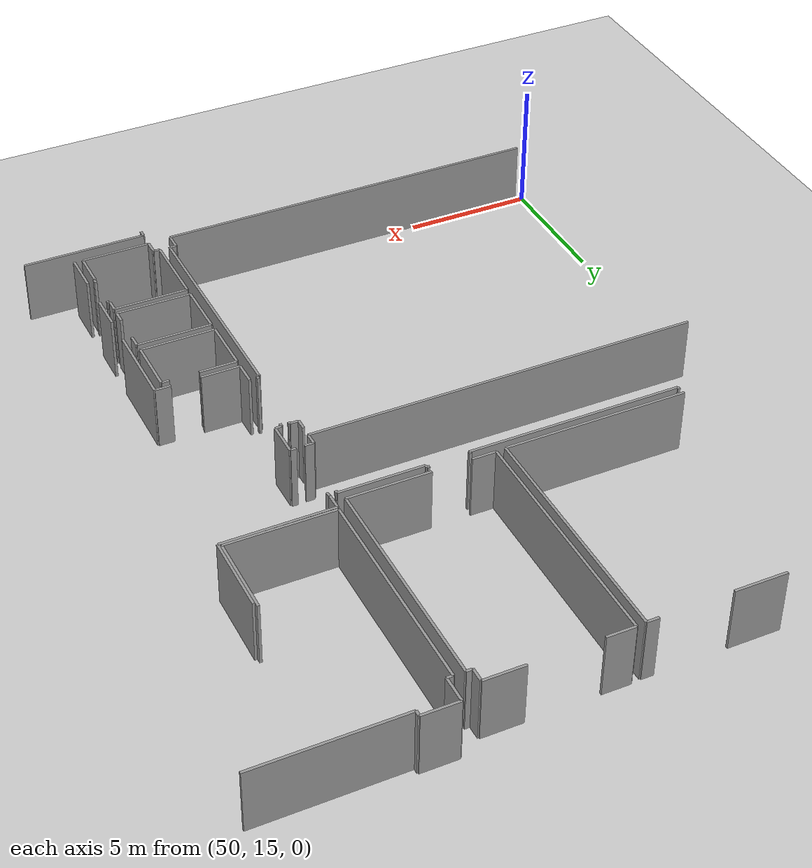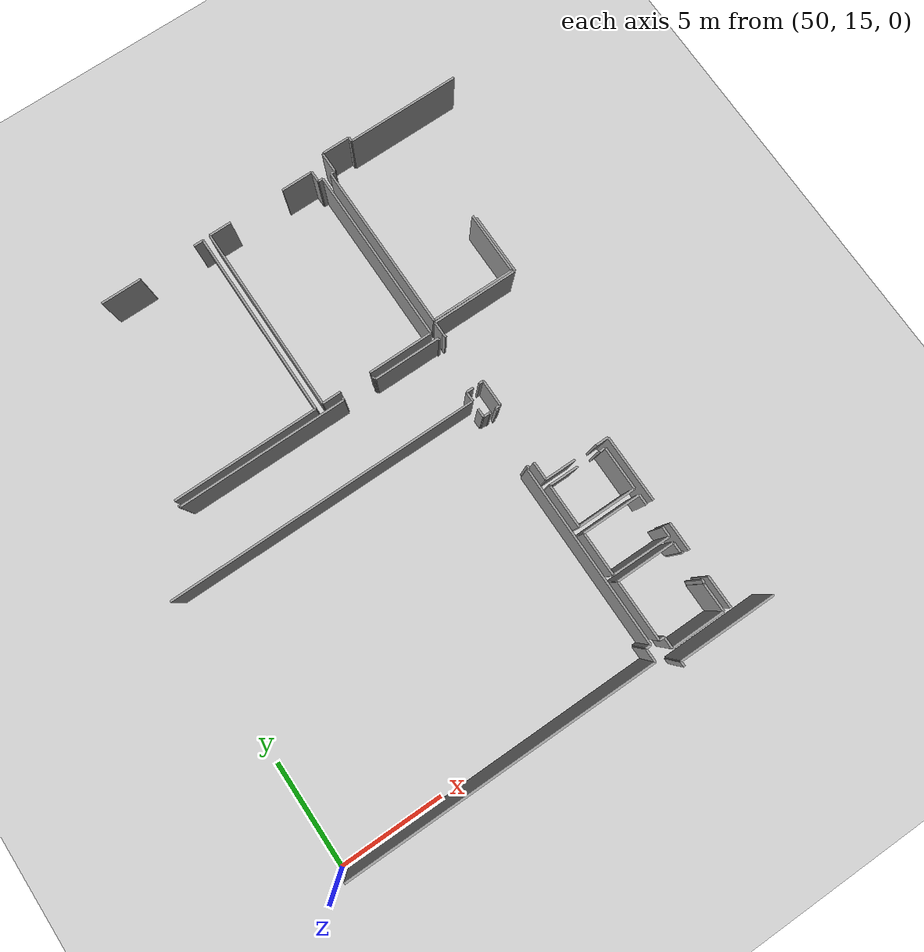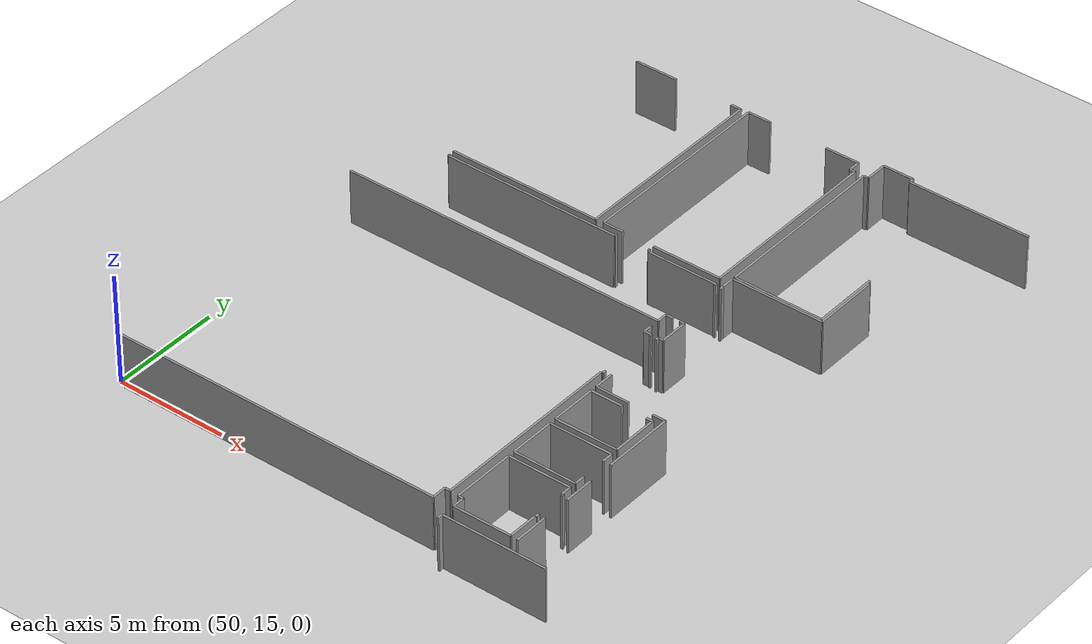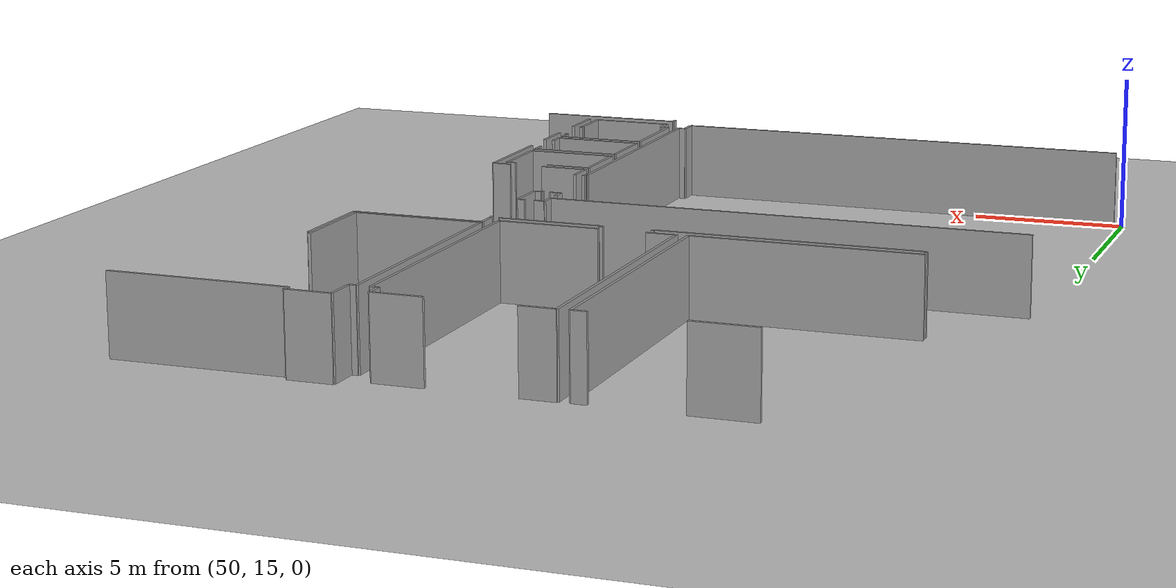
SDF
<sdf version="1.6">
 <world name="default">
  <model name="ground_plane">
   <static>1</static>
   <link name="link">
    <collision name="collision">
     <geometry><plane><normal>0 0 1</normal><size>100 100</size></plane></geometry>
     <surface><friction><ode><mu>100</mu><mu2>50</mu2></ode></friction></surface>
    </collision>
    <visual name="visual">
     <cast_shadows>0</cast_shadows>
     <geometry><plane><normal>0 0 1</normal><size>100 100</size></plane></geometry>
     <material>
      <script><uri>file://media/materials/scripts/gazebo.material</uri><name>Gazebo/Grey</name></script>
     </material>
    </visual>
   </link>
  </model>
  <model name="0510035739_A_40_1_102">
   <static>1</static>
   <link name="Wall_568">
    <collision name="Wall_568_Collision">
     <geometry><box><size>0.252937887574 0.1 2.5</size></box></geometry>
     <pose>0.126468943787 0 1.25 0 0 0</pose>
    </collision>
    <visual name="Wall_568_Visual">
     <pose>0.126468943787 0 1.25 0 0 0</pose>
     <geometry><box><size>0.252937887574 0.1 2.5</size></box></geometry>
     <material>
      <script><uri>file://media/materials/scripts/gazebo.material</uri><name>Gazebo/Grey</name></script>
      <ambient>1 1 1 1</ambient>
     </material>
    </visual>
    <pose>158.758133558 -35.7610361029 0 0 0 1.57079632679</pose>
   </link>
   <link name="Wall_569">
    <collision name="Wall_569_Collision">
     <geometry><box><size>4.76888532846 0.1 2.5</size></box></geometry>
     <pose>2.38444266423 0 1.25 0 0 0</pose>
    </collision>
    <visual name="Wall_569_Visual">
     <pose>2.38444266423 0 1.25 0 0 0</pose>
     <geometry><box><size>4.76888532846 0.1 2.5</size></box></geometry>
     <material>
      <script><uri>file://media/materials/scripts/gazebo.material</uri><name>Gazebo/Grey</name></script>
      <ambient>1 1 1 1</ambient>
     </material>
    </visual>
    <pose>158.758133558 -35.5080982153 0 0 0 0.0</pose>
   </link>
   <link name="Wall_801">
    <collision name="Wall_801_Collision">
     <geometry><box><size>1.9817288674 0.1 2.5</size></box></geometry>
     <pose>0.990864433698 0 1.25 0 0 0</pose>
    </collision>
    <visual name="Wall_801_Visual">
     <pose>0.990864433698 0 1.25 0 0 0</pose>
     <geometry><box><size>1.9817288674 0.1 2.5</size></box></geometry>
     <material>
      <script><uri>file://media/materials/scripts/gazebo.material</uri><name>Gazebo/Grey</name></script>
      <ambient>1 1 1 1</ambient>
     </material>
    </visual>
    <pose>146.998177472 -9.24331325708 0 0 0 0.0</pose>
   </link>
   <link name="Wall_802">
    <collision name="Wall_802_Collision">
     <geometry><box><size>0.46639403036 0.1 2.5</size></box></geometry>
     <pose>0.23319701518 0 1.25 0 0 0</pose>
    </collision>
    <visual name="Wall_802_Visual">
     <pose>0.23319701518 0 1.25 0 0 0</pose>
     <geometry><box><size>0.46639403036 0.1 2.5</size></box></geometry>
     <material>
      <script><uri>file://media/materials/scripts/gazebo.material</uri><name>Gazebo/Grey</name></script>
      <ambient>1 1 1 1</ambient>
     </material>
    </visual>
    <pose>151.702873125 -9.24331325708 0 0 0 0.0</pose>
   </link>
   <link name="Wall_803">
    <collision name="Wall_803_Collision">
     <geometry><box><size>9.13887767409 0.1 2.5</size></box></geometry>
     <pose>4.56943883705 0 1.25 0 0 0</pose>
    </collision>
    <visual name="Wall_803_Visual">
     <pose>4.56943883705 0 1.25 0 0 0</pose>
     <geometry><box><size>9.13887767409 0.1 2.5</size></box></geometry>
     <material>
      <script><uri>file://media/materials/scripts/gazebo.material</uri><name>Gazebo/Grey</name></script>
      <ambient>1 1 1 1</ambient>
     </material>
    </visual>
    <pose>152.169267155 -9.24331325708 0 0 0 -1.57079632679</pose>
   </link>
   <link name="Wall_804">
    <collision name="Wall_804_Collision">
     <geometry><box><size>7.04532631662 0.1 2.5</size></box></geometry>
     <pose>3.52266315831 0 1.25 0 0 0</pose>
    </collision>
    <visual name="Wall_804_Visual">
     <pose>3.52266315831 0 1.25 0 0 0</pose>
     <geometry><box><size>7.04532631662 0.1 2.5</size></box></geometry>
     <material>
      <script><uri>file://media/materials/scripts/gazebo.material</uri><name>Gazebo/Grey</name></script>
      <ambient>1 1 1 1</ambient>
     </material>
    </visual>
    <pose>152.169267155 -18.3821909312 0 0 0 3.14159265359</pose>
   </link>
   <link name="Wall_808">
    <collision name="Wall_808_Collision">
     <geometry><box><size>9.13658518569 0.1 2.5</size></box></geometry>
     <pose>4.56829259284 0 1.25 0 0 0</pose>
    </collision>
    <visual name="Wall_808_Visual">
     <pose>4.56829259284 0 1.25 0 0 0</pose>
     <geometry><box><size>9.13658518569 0.1 2.5</size></box></geometry>
     <material>
      <script><uri>file://media/materials/scripts/gazebo.material</uri><name>Gazebo/Grey</name></script>
      <ambient>1 1 1 1</ambient>
     </material>
    </visual>
    <pose>152.532499207 -18.3490772097 0 0 0 1.57079632679</pose>
   </link>
   <link name="Wall_809">
    <collision name="Wall_809_Collision">
     <geometry><box><size>1.08154508624 0.1 2.5</size></box></geometry>
     <pose>0.540772543121 0 1.25 0 0 0</pose>
    </collision>
    <visual name="Wall_809_Visual">
     <pose>0.540772543121 0 1.25 0 0 0</pose>
     <geometry><box><size>1.08154508624 0.1 2.5</size></box></geometry>
     <material>
      <script><uri>file://media/materials/scripts/gazebo.material</uri><name>Gazebo/Grey</name></script>
      <ambient>1 1 1 1</ambient>
     </material>
    </visual>
    <pose>152.532499207 -9.21249202405 0 0 0 0.0</pose>
   </link>
   <link name="Wall_810">
    <collision name="Wall_810_Collision">
     <geometry><box><size>1.55634490743 0.1 2.5</size></box></geometry>
     <pose>0.778172453714 0 1.25 0 0 0</pose>
    </collision>
    <visual name="Wall_810_Visual">
     <pose>0.778172453714 0 1.25 0 0 0</pose>
     <geometry><box><size>1.55634490743 0.1 2.5</size></box></geometry>
     <material>
      <script><uri>file://media/materials/scripts/gazebo.material</uri><name>Gazebo/Grey</name></script>
      <ambient>1 1 1 1</ambient>
     </material>
    </visual>
    <pose>156.318671172 -9.21249202405 0 0 0 0.0</pose>
   </link>
   <link name="Wall_811">
    <collision name="Wall_811_Collision">
     <geometry><box><size>0.543319752462 0.1 2.5</size></box></geometry>
     <pose>0.271659876231 0 1.25 0 0 0</pose>
    </collision>
    <visual name="Wall_811_Visual">
     <pose>0.271659876231 0 1.25 0 0 0</pose>
     <geometry><box><size>0.543319752462 0.1 2.5</size></box></geometry>
     <material>
      <script><uri>file://media/materials/scripts/gazebo.material</uri><name>Gazebo/Grey</name></script>
      <ambient>1 1 1 1</ambient>
     </material>
    </visual>
    <pose>157.875016079 -9.21249202405 0 0 0 -1.57079632679</pose>
   </link>
   <link name="Wall_812">
    <collision name="Wall_812_Collision">
     <geometry><box><size>0.234597980318 0.1 2.5</size></box></geometry>
     <pose>0.117298990159 0 1.25 0 0 0</pose>
    </collision>
    <visual name="Wall_812_Visual">
     <pose>0.117298990159 0 1.25 0 0 0</pose>
     <geometry><box><size>0.234597980318 0.1 2.5</size></box></geometry>
     <material>
      <script><uri>file://media/materials/scripts/gazebo.material</uri><name>Gazebo/Grey</name></script>
      <ambient>1 1 1 1</ambient>
     </material>
    </visual>
    <pose>157.875016079 -9.75581177651 0 0 0 0.0</pose>
   </link>
   <link name="Wall_813">
    <collision name="Wall_813_Collision">
     <geometry><box><size>8.59199182855 0.1 2.5</size></box></geometry>
     <pose>4.29599591428 0 1.25 0 0 0</pose>
    </collision>
    <visual name="Wall_813_Visual">
     <pose>4.29599591428 0 1.25 0 0 0</pose>
     <geometry><box><size>8.59199182855 0.1 2.5</size></box></geometry>
     <material>
      <script><uri>file://media/materials/scripts/gazebo.material</uri><name>Gazebo/Grey</name></script>
      <ambient>1 1 1 1</ambient>
     </material>
    </visual>
    <pose>158.10961406 -9.75581177651 0 0 0 -1.57079632679</pose>
   </link>
   <link name="Wall_814">
    <collision name="Wall_814_Collision">
     <geometry><box><size>3.15777542019 0.1 2.5</size></box></geometry>
     <pose>1.5788877101 0 1.25 0 0 0</pose>
    </collision>
    <visual name="Wall_814_Visual">
     <pose>1.5788877101 0 1.25 0 0 0</pose>
     <geometry><box><size>3.15777542019 0.1 2.5</size></box></geometry>
     <material>
      <script><uri>file://media/materials/scripts/gazebo.material</uri><name>Gazebo/Grey</name></script>
      <ambient>1 1 1 1</ambient>
     </material>
    </visual>
    <pose>158.10961406 -18.3478036051 0 0 0 3.14159265359</pose>
   </link>
   <link name="Wall_815">
    <collision name="Wall_815_Collision">
     <geometry><box><size>0.925402030045 0.1 2.5</size></box></geometry>
     <pose>0.462701015022 0 1.25 0 0 0</pose>
    </collision>
    <visual name="Wall_815_Visual">
     <pose>0.462701015022 0 1.25 0 0 0</pose>
     <geometry><box><size>0.925402030045 0.1 2.5</size></box></geometry>
     <material>
      <script><uri>file://media/materials/scripts/gazebo.material</uri><name>Gazebo/Grey</name></script>
      <ambient>1 1 1 1</ambient>
     </material>
    </visual>
    <pose>153.457900361 -18.3478036051 0 0 0 -3.14021638141</pose>
   </link>
   <link name="Wall_832">
    <collision name="Wall_832_Collision">
     <geometry><box><size>0.410864866724 0.1 2.5</size></box></geometry>
     <pose>0.205432433362 0 1.25 0 0 0</pose>
    </collision>
    <visual name="Wall_832_Visual">
     <pose>0.205432433362 0 1.25 0 0 0</pose>
     <geometry><box><size>0.410864866724 0.1 2.5</size></box></geometry>
     <material>
      <script><uri>file://media/materials/scripts/gazebo.material</uri><name>Gazebo/Grey</name></script>
      <ambient>1 1 1 1</ambient>
     </material>
    </visual>
    <pose>157.884440754 -22.2549680134 0 0 0 -1.57079632679</pose>
   </link>
   <link name="Wall_833">
    <collision name="Wall_833_Collision">
     <geometry><box><size>0.330373051544 0.1 2.5</size></box></geometry>
     <pose>0.165186525772 0 1.25 0 0 0</pose>
    </collision>
    <visual name="Wall_833_Visual">
     <pose>0.165186525772 0 1.25 0 0 0</pose>
     <geometry><box><size>0.330373051544 0.1 2.5</size></box></geometry>
     <material>
      <script><uri>file://media/materials/scripts/gazebo.material</uri><name>Gazebo/Grey</name></script>
      <ambient>1 1 1 1</ambient>
     </material>
    </visual>
    <pose>157.884440754 -22.6658328801 0 0 0 0.0</pose>
   </link>
   <link name="Wall_834">
    <collision name="Wall_834_Collision">
     <geometry><box><size>0.088133443203 0.1 2.5</size></box></geometry>
     <pose>0.0440667216015 0 1.25 0 0 0</pose>
    </collision>
    <visual name="Wall_834_Visual">
     <pose>0.0440667216015 0 1.25 0 0 0</pose>
     <geometry><box><size>0.088133443203 0.1 2.5</size></box></geometry>
     <material>
      <script><uri>file://media/materials/scripts/gazebo.material</uri><name>Gazebo/Grey</name></script>
      <ambient>1 1 1 1</ambient>
     </material>
    </visual>
    <pose>158.214813805 -22.6658328801 0 0 0 -1.57079632679</pose>
   </link>
   <link name="Wall_835">
    <collision name="Wall_835_Collision">
     <geometry><box><size>0.153342002336 0.1 2.5</size></box></geometry>
     <pose>0.0766710011679 0 1.25 0 0 0</pose>
    </collision>
    <visual name="Wall_835_Visual">
     <pose>0.0766710011679 0 1.25 0 0 0</pose>
     <geometry><box><size>0.153342002336 0.1 2.5</size></box></geometry>
     <material>
      <script><uri>file://media/materials/scripts/gazebo.material</uri><name>Gazebo/Grey</name></script>
      <ambient>1 1 1 1</ambient>
     </material>
    </visual>
    <pose>158.214813805 -25.4053565265 0 0 0 -1.57079632679</pose>
   </link>
   <link name="Wall_836">
    <collision name="Wall_836_Collision">
     <geometry><box><size>0.0789634895749 0.1 2.5</size></box></geometry>
     <pose>0.0394817447875 0 1.25 0 0 0</pose>
    </collision>
    <visual name="Wall_836_Visual">
     <pose>0.0394817447875 0 1.25 0 0 0</pose>
     <geometry><box><size>0.0789634895749 0.1 2.5</size></box></geometry>
     <material>
      <script><uri>file://media/materials/scripts/gazebo.material</uri><name>Gazebo/Grey</name></script>
      <ambient>1 1 1 1</ambient>
     </material>
    </visual>
    <pose>158.214813805 -25.5586985289 0 0 0 3.14159265359</pose>
   </link>
   <link name="Wall_837">
    <collision name="Wall_837_Collision">
     <geometry><box><size>8.74584327276 0.1 2.5</size></box></geometry>
     <pose>4.37292163638 0 1.25 0 0 0</pose>
    </collision>
    <visual name="Wall_837_Visual">
     <pose>4.37292163638 0 1.25 0 0 0</pose>
     <geometry><box><size>8.74584327276 0.1 2.5</size></box></geometry>
     <material>
      <script><uri>file://media/materials/scripts/gazebo.material</uri><name>Gazebo/Grey</name></script>
      <ambient>1 1 1 1</ambient>
     </material>
    </visual>
    <pose>158.135850316 -25.5586985289 0 0 0 -1.57079632679</pose>
   </link>
   <link name="Wall_838">
    <collision name="Wall_838_Collision">
     <geometry><box><size>0.251919003837 0.1 2.5</size></box></geometry>
     <pose>0.125959501919 0 1.25 0 0 0</pose>
    </collision>
    <visual name="Wall_838_Visual">
     <pose>0.125959501919 0 1.25 0 0 0</pose>
     <geometry><box><size>0.251919003837 0.1 2.5</size></box></geometry>
     <material>
      <script><uri>file://media/materials/scripts/gazebo.material</uri><name>Gazebo/Grey</name></script>
      <ambient>1 1 1 1</ambient>
     </material>
    </visual>
    <pose>158.135850316 -34.3045418016 0 0 0 3.14159265359</pose>
   </link>
   <link name="Wall_839">
    <collision name="Wall_839_Collision">
     <geometry><box><size>0.64597228891 0.1 2.5</size></box></geometry>
     <pose>0.322986144455 0 1.25 0 0 0</pose>
    </collision>
    <visual name="Wall_839_Visual">
     <pose>0.322986144455 0 1.25 0 0 0</pose>
     <geometry><box><size>0.64597228891 0.1 2.5</size></box></geometry>
     <material>
      <script><uri>file://media/materials/scripts/gazebo.material</uri><name>Gazebo/Grey</name></script>
      <ambient>1 1 1 1</ambient>
     </material>
    </visual>
    <pose>157.883931312 -34.3045418016 0 0 0 -1.57079632679</pose>
   </link>
   <link name="Wall_840">
    <collision name="Wall_840_Collision">
     <geometry><box><size>15.0957814392 0.1 2.5</size></box></geometry>
     <pose>7.54789071962 0 1.25 0 0 0</pose>
    </collision>
    <visual name="Wall_840_Visual">
     <pose>7.54789071962 0 1.25 0 0 0</pose>
     <geometry><box><size>15.0957814392 0.1 2.5</size></box></geometry>
     <material>
      <script><uri>file://media/materials/scripts/gazebo.material</uri><name>Gazebo/Grey</name></script>
      <ambient>1 1 1 1</ambient>
     </material>
    </visual>
    <pose>157.883931312 -34.9505140905 0 0 0 3.14159265359</pose>
   </link>
   <link name="Wall_861">
    <collision name="Wall_861_Collision">
     <geometry><box><size>0.101124210843 0.1 2.5</size></box></geometry>
     <pose>0.0505621054214 0 1.25 0 0 0</pose>
    </collision>
    <visual name="Wall_861_Visual">
     <pose>0.0505621054214 0 1.25 0 0 0</pose>
     <geometry><box><size>0.101124210843 0.1 2.5</size></box></geometry>
     <material>
      <script><uri>file://media/materials/scripts/gazebo.material</uri><name>Gazebo/Grey</name></script>
      <ambient>1 1 1 1</ambient>
     </material>
    </visual>
    <pose>145.179979444 -18.6274871907 0 0 0 -1.57079632679</pose>
   </link>
   <link name="Wall_862">
    <collision name="Wall_862_Collision">
     <geometry><box><size>8.18520249677 0.1 2.5</size></box></geometry>
     <pose>4.09260124839 0 1.25 0 0 0</pose>
    </collision>
    <visual name="Wall_862_Visual">
     <pose>4.09260124839 0 1.25 0 0 0</pose>
     <geometry><box><size>8.18520249677 0.1 2.5</size></box></geometry>
     <material>
      <script><uri>file://media/materials/scripts/gazebo.material</uri><name>Gazebo/Grey</name></script>
      <ambient>1 1 1 1</ambient>
     </material>
    </visual>
    <pose>145.179979444 -18.7286114016 0 0 0 0.0</pose>
   </link>
   <link name="Wall_863">
    <collision name="Wall_863_Collision">
     <geometry><box><size>0.11335081568 0.1 2.5</size></box></geometry>
     <pose>0.0566754078401 0 1.25 0 0 0</pose>
    </collision>
    <visual name="Wall_863_Visual">
     <pose>0.0566754078401 0 1.25 0 0 0</pose>
     <geometry><box><size>0.11335081568 0.1 2.5</size></box></geometry>
     <material>
      <script><uri>file://media/materials/scripts/gazebo.material</uri><name>Gazebo/Grey</name></script>
      <ambient>1 1 1 1</ambient>
     </material>
    </visual>
    <pose>153.365181941 -18.7286114016 0 0 0 1.57079632679</pose>
   </link>
   <link name="Wall_864">
    <collision name="Wall_864_Collision">
     <geometry><box><size>0.101378931777 0.1 2.5</size></box></geometry>
     <pose>0.0506894658884 0 1.25 0 0 0</pose>
    </collision>
    <visual name="Wall_864_Visual">
     <pose>0.0506894658884 0 1.25 0 0 0</pose>
     <geometry><box><size>0.101378931777 0.1 2.5</size></box></geometry>
     <material>
      <script><uri>file://media/materials/scripts/gazebo.material</uri><name>Gazebo/Grey</name></script>
      <ambient>1 1 1 1</ambient>
     </material>
    </visual>
    <pose>154.898856685 -18.6152605859 0 0 0 0.0</pose>
   </link>
   <link name="Wall_865">
    <collision name="Wall_865_Collision">
     <geometry><box><size>0.106728071393 0.1 2.5</size></box></geometry>
     <pose>0.0533640356966 0 1.25 0 0 0</pose>
    </collision>
    <visual name="Wall_865_Visual">
     <pose>0.0533640356966 0 1.25 0 0 0</pose>
     <geometry><box><size>0.106728071393 0.1 2.5</size></box></geometry>
     <material>
      <script><uri>file://media/materials/scripts/gazebo.material</uri><name>Gazebo/Grey</name></script>
      <ambient>1 1 1 1</ambient>
     </material>
    </visual>
    <pose>155.000235617 -18.6152605859 0 0 0 -1.57079632679</pose>
   </link>
   <link name="Wall_866">
    <collision name="Wall_866_Collision">
     <geometry><box><size>3.23673890977 0.1 2.5</size></box></geometry>
     <pose>1.61836945488 0 1.25 0 0 0</pose>
    </collision>
    <visual name="Wall_866_Visual">
     <pose>1.61836945488 0 1.25 0 0 0</pose>
     <geometry><box><size>3.23673890977 0.1 2.5</size></box></geometry>
     <material>
      <script><uri>file://media/materials/scripts/gazebo.material</uri><name>Gazebo/Grey</name></script>
      <ambient>1 1 1 1</ambient>
     </material>
    </visual>
    <pose>155.000235617 -18.7219886573 0 0 0 0.0</pose>
   </link>
   <link name="Wall_867">
    <collision name="Wall_867_Collision">
     <geometry><box><size>0.108511117932 0.1 2.5</size></box></geometry>
     <pose>0.054255558966 0 1.25 0 0 0</pose>
    </collision>
    <visual name="Wall_867_Visual">
     <pose>0.054255558966 0 1.25 0 0 0</pose>
     <geometry><box><size>0.108511117932 0.1 2.5</size></box></geometry>
     <material>
      <script><uri>file://media/materials/scripts/gazebo.material</uri><name>Gazebo/Grey</name></script>
      <ambient>1 1 1 1</ambient>
     </material>
    </visual>
    <pose>158.236974527 -18.7219886573 0 0 0 -1.57079632679</pose>
   </link>
   <link name="Wall_868">
    <collision name="Wall_868_Collision">
     <geometry><box><size>0.339797726106 0.1 2.5</size></box></geometry>
     <pose>0.169898863053 0 1.25 0 0 0</pose>
    </collision>
    <visual name="Wall_868_Visual">
     <pose>0.169898863053 0 1.25 0 0 0</pose>
     <geometry><box><size>0.339797726106 0.1 2.5</size></box></geometry>
     <material>
      <script><uri>file://media/materials/scripts/gazebo.material</uri><name>Gazebo/Grey</name></script>
      <ambient>1 1 1 1</ambient>
     </material>
    </visual>
    <pose>158.236974527 -21.3771996745 0 0 0 3.14159265359</pose>
   </link>
   <link name="Wall_869">
    <collision name="Wall_869_Collision">
     <geometry><box><size>0.465884588492 0.1 2.5</size></box></geometry>
     <pose>0.232942294246 0 1.25 0 0 0</pose>
    </collision>
    <visual name="Wall_869_Visual">
     <pose>0.232942294246 0 1.25 0 0 0</pose>
     <geometry><box><size>0.465884588492 0.1 2.5</size></box></geometry>
     <material>
      <script><uri>file://media/materials/scripts/gazebo.material</uri><name>Gazebo/Grey</name></script>
      <ambient>1 1 1 1</ambient>
     </material>
    </visual>
    <pose>157.897176801 -21.3771996745 0 0 0 -1.57079632679</pose>
   </link>
   <link name="Wall_870">
    <collision name="Wall_870_Collision">
     <geometry><box><size>15.0792245785 0.1 2.5</size></box></geometry>
     <pose>7.53961228927 0 1.25 0 0 0</pose>
    </collision>
    <visual name="Wall_870_Visual">
     <pose>7.53961228927 0 1.25 0 0 0</pose>
     <geometry><box><size>15.0792245785 0.1 2.5</size></box></geometry>
     <material>
      <script><uri>file://media/materials/scripts/gazebo.material</uri><name>Gazebo/Grey</name></script>
      <ambient>1 1 1 1</ambient>
     </material>
    </visual>
    <pose>157.897176801 -21.843084263 0 0 0 3.14159265359</pose>
   </link>
   <link name="Wall_889">
    <collision name="Wall_889_Collision">
     <geometry><box><size>8.19590077601 0.1 2.5</size></box></geometry>
     <pose>4.097950388 0 1.25 0 0 0</pose>
    </collision>
    <visual name="Wall_889_Visual">
     <pose>4.097950388 0 1.25 0 0 0</pose>
     <geometry><box><size>8.19590077601 0.1 2.5</size></box></geometry>
     <material>
      <script><uri>file://media/materials/scripts/gazebo.material</uri><name>Gazebo/Grey</name></script>
      <ambient>1 1 1 1</ambient>
     </material>
    </visual>
    <pose>158.528375275 -17.9552786456 0 0 0 1.57079632679</pose>
   </link>
   <link name="Wall_890">
    <collision name="Wall_890_Collision">
     <geometry><box><size>0.225937468558 0.1 2.5</size></box></geometry>
     <pose>0.112968734279 0 1.25 0 0 0</pose>
    </collision>
    <visual name="Wall_890_Visual">
     <pose>0.112968734279 0 1.25 0 0 0</pose>
     <geometry><box><size>0.225937468558 0.1 2.5</size></box></geometry>
     <material>
      <script><uri>file://media/materials/scripts/gazebo.material</uri><name>Gazebo/Grey</name></script>
      <ambient>1 1 1 1</ambient>
     </material>
    </visual>
    <pose>158.528375275 -9.75937786959 0 0 0 0.0</pose>
   </link>
   <link name="Wall_891">
    <collision name="Wall_891_Collision">
     <geometry><box><size>1.01302515497 0.1 2.5</size></box></geometry>
     <pose>0.506512577483 0 1.25 0 0 0</pose>
    </collision>
    <visual name="Wall_891_Visual">
     <pose>0.506512577483 0 1.25 0 0 0</pose>
     <geometry><box><size>1.01302515497 0.1 2.5</size></box></geometry>
     <material>
      <script><uri>file://media/materials/scripts/gazebo.material</uri><name>Gazebo/Grey</name></script>
      <ambient>1 1 1 1</ambient>
     </material>
    </visual>
    <pose>158.754312744 -9.75937786959 0 0 0 1.57079632679</pose>
   </link>
   <link name="Wall_892">
    <collision name="Wall_892_Collision">
     <geometry><box><size>1.39867264921 0.1 2.5</size></box></geometry>
     <pose>0.699336324606 0 1.25 0 0 0</pose>
    </collision>
    <visual name="Wall_892_Visual">
     <pose>0.699336324606 0 1.25 0 0 0</pose>
     <geometry><box><size>1.39867264921 0.1 2.5</size></box></geometry>
     <material>
      <script><uri>file://media/materials/scripts/gazebo.material</uri><name>Gazebo/Grey</name></script>
      <ambient>1 1 1 1</ambient>
     </material>
    </visual>
    <pose>158.754312744 -8.74635271462 0 0 0 0.0</pose>
   </link>
   <link name="Wall_893">
    <collision name="Wall_893_Collision">
     <geometry><box><size>0.220078887073 0.1 2.5</size></box></geometry>
     <pose>0.110039443537 0 1.25 0 0 0</pose>
    </collision>
    <visual name="Wall_893_Visual">
     <pose>0.110039443537 0 1.25 0 0 0</pose>
     <geometry><box><size>0.220078887073 0.1 2.5</size></box></geometry>
     <material>
      <script><uri>file://media/materials/scripts/gazebo.material</uri><name>Gazebo/Grey</name></script>
      <ambient>1 1 1 1</ambient>
     </material>
    </visual>
    <pose>160.152985393 -8.74635271462 0 0 0 -1.57079632679</pose>
   </link>
   <link name="Wall_894">
    <collision name="Wall_894_Collision">
     <geometry><box><size>5.56106743355 0.1 2.5</size></box></geometry>
     <pose>2.78053371677 0 1.25 0 0 0</pose>
    </collision>
    <visual name="Wall_894_Visual">
     <pose>2.78053371677 0 1.25 0 0 0</pose>
     <geometry><box><size>5.56106743355 0.1 2.5</size></box></geometry>
     <material>
      <script><uri>file://media/materials/scripts/gazebo.material</uri><name>Gazebo/Grey</name></script>
      <ambient>1 1 1 1</ambient>
     </material>
    </visual>
    <pose>160.152985393 -8.9664316017 0 0 0 0.0</pose>
   </link>
   <link name="Wall_899">
    <collision name="Wall_899_Collision">
     <geometry><box><size>3.02990551127 0.1 2.5</size></box></geometry>
     <pose>1.51495275563 0 1.25 0 0 0</pose>
    </collision>
    <visual name="Wall_899_Visual">
     <pose>1.51495275563 0 1.25 0 0 0</pose>
     <geometry><box><size>3.02990551127 0.1 2.5</size></box></geometry>
     <material>
      <script><uri>file://media/materials/scripts/gazebo.material</uri><name>Gazebo/Grey</name></script>
      <ambient>1 1 1 1</ambient>
     </material>
    </visual>
    <pose>162.627599268 -14.9462602509 0 0 0 -1.57079632679</pose>
   </link>
   <link name="Wall_900">
    <collision name="Wall_900_Collision">
     <geometry><box><size>4.09927720626 0.1 2.5</size></box></geometry>
     <pose>2.04963860313 0 1.25 0 0 0</pose>
    </collision>
    <visual name="Wall_900_Visual">
     <pose>2.04963860313 0 1.25 0 0 0</pose>
     <geometry><box><size>4.09927720626 0.1 2.5</size></box></geometry>
     <material>
      <script><uri>file://media/materials/scripts/gazebo.material</uri><name>Gazebo/Grey</name></script>
      <ambient>1 1 1 1</ambient>
     </material>
    </visual>
    <pose>162.627599268 -17.9761657622 0 0 0 3.1364973146</pose>
   </link>
   <link name="Wall_901">
    <collision name="Wall_901_Collision">
     <geometry><box><size>0.612858567475 0.1 2.5</size></box></geometry>
     <pose>0.306429283737 0 1.25 0 0 0</pose>
    </collision>
    <visual name="Wall_901_Visual">
     <pose>0.306429283737 0 1.25 0 0 0</pose>
     <geometry><box><size>0.612858567475 0.1 2.5</size></box></geometry>
     <material>
      <script><uri>file://media/materials/scripts/gazebo.material</uri><name>Gazebo/Grey</name></script>
      <ambient>1 1 1 1</ambient>
     </material>
    </visual>
    <pose>158.51869588 -18.6832710753 0 0 0 1.57079632679</pose>
   </link>
   <link name="Wall_902">
    <collision name="Wall_902_Collision">
     <geometry><box><size>4.20391429659 0.1 2.5</size></box></geometry>
     <pose>2.1019571483 0 1.25 0 0 0</pose>
    </collision>
    <visual name="Wall_902_Visual">
     <pose>2.1019571483 0 1.25 0 0 0</pose>
     <geometry><box><size>4.20391429659 0.1 2.5</size></box></geometry>
     <material>
      <script><uri>file://media/materials/scripts/gazebo.material</uri><name>Gazebo/Grey</name></script>
      <ambient>1 1 1 1</ambient>
     </material>
    </visual>
    <pose>158.51869588 -18.0704125078 0 0 0 0.0</pose>
   </link>
   <link name="Wall_903">
    <collision name="Wall_903_Collision">
     <geometry><box><size>2.95450811477 0.1 2.5</size></box></geometry>
     <pose>1.47725405739 0 1.25 0 0 0</pose>
    </collision>
    <visual name="Wall_903_Visual">
     <pose>1.47725405739 0 1.25 0 0 0</pose>
     <geometry><box><size>2.95450811477 0.1 2.5</size></box></geometry>
     <material>
      <script><uri>file://media/materials/scripts/gazebo.material</uri><name>Gazebo/Grey</name></script>
      <ambient>1 1 1 1</ambient>
     </material>
    </visual>
    <pose>162.722610176 -18.0704125078 0 0 0 1.57079632679</pose>
   </link>
   <link name="Wall_912">
    <collision name="Wall_912_Collision">
     <geometry><box><size>1.54360886072 0.1 2.5</size></box></geometry>
     <pose>0.771804430361 0 1.25 0 0 0</pose>
    </collision>
    <visual name="Wall_912_Visual">
     <pose>0.771804430361 0 1.25 0 0 0</pose>
     <geometry><box><size>1.54360886072 0.1 2.5</size></box></geometry>
     <material>
      <script><uri>file://media/materials/scripts/gazebo.material</uri><name>Gazebo/Grey</name></script>
      <ambient>1 1 1 1</ambient>
     </material>
    </visual>
    <pose>161.746519557 -34.9237683924 0 0 0 1.57079632679</pose>
   </link>
   <link name="Wall_913">
    <collision name="Wall_913_Collision">
     <geometry><box><size>1.35842674162 0.1 2.5</size></box></geometry>
     <pose>0.679213370811 0 1.25 0 0 0</pose>
    </collision>
    <visual name="Wall_913_Visual">
     <pose>0.679213370811 0 1.25 0 0 0</pose>
     <geometry><box><size>1.35842674162 0.1 2.5</size></box></geometry>
     <material>
      <script><uri>file://media/materials/scripts/gazebo.material</uri><name>Gazebo/Grey</name></script>
      <ambient>1 1 1 1</ambient>
     </material>
    </visual>
    <pose>161.746519557 -32.087705512 0 0 0 1.57079632679</pose>
   </link>
   <link name="Wall_914">
    <collision name="Wall_914_Collision">
     <geometry><box><size>3.23266337482 0.1 2.5</size></box></geometry>
     <pose>1.61633168741 0 1.25 0 0 0</pose>
    </collision>
    <visual name="Wall_914_Visual">
     <pose>1.61633168741 0 1.25 0 0 0</pose>
     <geometry><box><size>3.23266337482 0.1 2.5</size></box></geometry>
     <material>
      <script><uri>file://media/materials/scripts/gazebo.material</uri><name>Gazebo/Grey</name></script>
      <ambient>1 1 1 1</ambient>
     </material>
    </visual>
    <pose>161.746519557 -29.5797231948 0 0 0 1.57079632679</pose>
   </link>
   <link name="Wall_915">
    <collision name="Wall_915_Collision">
     <geometry><box><size>0.599103637033 0.1 2.5</size></box></geometry>
     <pose>0.299551818516 0 1.25 0 0 0</pose>
    </collision>
    <visual name="Wall_915_Visual">
     <pose>0.299551818516 0 1.25 0 0 0</pose>
     <geometry><box><size>0.599103637033 0.1 2.5</size></box></geometry>
     <material>
      <script><uri>file://media/materials/scripts/gazebo.material</uri><name>Gazebo/Grey</name></script>
      <ambient>1 1 1 1</ambient>
     </material>
    </visual>
    <pose>161.746519557 -26.3470598199 0 0 0 3.14159265359</pose>
   </link>
   <link name="Wall_916">
    <collision name="Wall_916_Collision">
     <geometry><box><size>1.49852325538 0.1 2.5</size></box></geometry>
     <pose>0.749261627692 0 1.25 0 0 0</pose>
    </collision>
    <visual name="Wall_916_Visual">
     <pose>0.749261627692 0 1.25 0 0 0</pose>
     <geometry><box><size>1.49852325538 0.1 2.5</size></box></geometry>
     <material>
      <script><uri>file://media/materials/scripts/gazebo.material</uri><name>Gazebo/Grey</name></script>
      <ambient>1 1 1 1</ambient>
     </material>
    </visual>
    <pose>160.02664381 -26.3470598199 0 0 0 3.14159265359</pose>
   </link>
   <link name="Wall_917">
    <collision name="Wall_917_Collision">
     <geometry><box><size>0.883881641371 0.1 2.5</size></box></geometry>
     <pose>0.441940820685 0 1.25 0 0 0</pose>
    </collision>
    <visual name="Wall_917_Visual">
     <pose>0.441940820685 0 1.25 0 0 0</pose>
     <geometry><box><size>0.883881641371 0.1 2.5</size></box></geometry>
     <material>
      <script><uri>file://media/materials/scripts/gazebo.material</uri><name>Gazebo/Grey</name></script>
      <ambient>1 1 1 1</ambient>
     </material>
    </visual>
    <pose>158.528120554 -26.3470598199 0 0 0 1.57079632679</pose>
   </link>
   <link name="Wall_918">
    <collision name="Wall_918_Collision">
     <geometry><box><size>0.144172048708 0.1 2.5</size></box></geometry>
     <pose>0.0720860243539 0 1.25 0 0 0</pose>
    </collision>
    <visual name="Wall_918_Visual">
     <pose>0.0720860243539 0 1.25 0 0 0</pose>
     <geometry><box><size>0.144172048708 0.1 2.5</size></box></geometry>
     <material>
      <script><uri>file://media/materials/scripts/gazebo.material</uri><name>Gazebo/Grey</name></script>
      <ambient>1 1 1 1</ambient>
     </material>
    </visual>
    <pose>158.528120554 -22.7909008588 0 0 0 1.57079632679</pose>
   </link>
   <link name="Wall_919">
    <collision name="Wall_919_Collision">
     <geometry><box><size>0.239692399 0.1 2.5</size></box></geometry>
     <pose>0.1198461995 0 1.25 0 0 0</pose>
    </collision>
    <visual name="Wall_919_Visual">
     <pose>0.1198461995 0 1.25 0 0 0</pose>
     <geometry><box><size>0.239692399 0.1 2.5</size></box></geometry>
     <material>
      <script><uri>file://media/materials/scripts/gazebo.material</uri><name>Gazebo/Grey</name></script>
      <ambient>1 1 1 1</ambient>
     </material>
    </visual>
    <pose>158.528120554 -22.6467288101 0 0 0 0.0</pose>
   </link>
   <link name="Wall_920">
    <collision name="Wall_920_Collision">
     <geometry><box><size>1.28226518232 0.1 2.5</size></box></geometry>
     <pose>0.641132591161 0 1.25 0 0 0</pose>
    </collision>
    <visual name="Wall_920_Visual">
     <pose>0.641132591161 0 1.25 0 0 0</pose>
     <geometry><box><size>1.28226518232 0.1 2.5</size></box></geometry>
     <material>
      <script><uri>file://media/materials/scripts/gazebo.material</uri><name>Gazebo/Grey</name></script>
      <ambient>1 1 1 1</ambient>
     </material>
    </visual>
    <pose>158.767812953 -22.6467288101 0 0 0 1.57079632679</pose>
   </link>
   <link name="Wall_921">
    <collision name="Wall_921_Collision">
     <geometry><box><size>0.220333608007 0.1 2.5</size></box></geometry>
     <pose>0.110166804004 0 1.25 0 0 0</pose>
    </collision>
    <visual name="Wall_921_Visual">
     <pose>0.110166804004 0 1.25 0 0 0</pose>
     <geometry><box><size>0.220333608007 0.1 2.5</size></box></geometry>
     <material>
      <script><uri>file://media/materials/scripts/gazebo.material</uri><name>Gazebo/Grey</name></script>
      <ambient>1 1 1 1</ambient>
     </material>
    </visual>
    <pose>158.767812953 -21.3644636278 0 0 0 3.14159265359</pose>
   </link>
   <link name="Wall_922">
    <collision name="Wall_922_Collision">
     <geometry><box><size>0.188160855766 0.1 2.5</size></box></geometry>
     <pose>0.094080427883 0 1.25 0 0 0</pose>
    </collision>
    <visual name="Wall_922_Visual">
     <pose>0.094080427883 0 1.25 0 0 0</pose>
     <geometry><box><size>0.188160855766 0.1 2.5</size></box></geometry>
     <material>
      <script><uri>file://media/materials/scripts/gazebo.material</uri><name>Gazebo/Grey</name></script>
      <ambient>1 1 1 1</ambient>
     </material>
    </visual>
    <pose>158.547479345 -18.8692173572 0 0 0 1.72437196205</pose>
   </link>
   <link name="Wall_923">
    <collision name="Wall_923_Collision">
     <geometry><box><size>2.09966465989 0.1 2.5</size></box></geometry>
     <pose>1.04983232995 0 1.25 0 0 0</pose>
    </collision>
    <visual name="Wall_923_Visual">
     <pose>1.04983232995 0 1.25 0 0 0</pose>
     <geometry><box><size>2.09966465989 0.1 2.5</size></box></geometry>
     <material>
      <script><uri>file://media/materials/scripts/gazebo.material</uri><name>Gazebo/Grey</name></script>
      <ambient>1 1 1 1</ambient>
     </material>
    </visual>
    <pose>158.523280857 -28.7462762983 0 0 0 1.57079632679</pose>
   </link>
   <link name="Wall_924">
    <collision name="Wall_924_Collision">
     <geometry><box><size>1.43993744054 0.1 2.5</size></box></geometry>
     <pose>0.719968720269 0 1.25 0 0 0</pose>
    </collision>
    <visual name="Wall_924_Visual">
     <pose>0.719968720269 0 1.25 0 0 0</pose>
     <geometry><box><size>1.43993744054 0.1 2.5</size></box></geometry>
     <material>
      <script><uri>file://media/materials/scripts/gazebo.material</uri><name>Gazebo/Grey</name></script>
      <ambient>1 1 1 1</ambient>
     </material>
    </visual>
    <pose>158.523280857 -26.6466116385 0 0 0 0.0</pose>
   </link>
   <link name="Wall_925">
    <collision name="Wall_925_Collision">
     <geometry><box><size>0.295985725439 0.1 2.5</size></box></geometry>
     <pose>0.147992862719 0 1.25 0 0 0</pose>
    </collision>
    <visual name="Wall_925_Visual">
     <pose>0.147992862719 0 1.25 0 0 0</pose>
     <geometry><box><size>0.295985725439 0.1 2.5</size></box></geometry>
     <material>
      <script><uri>file://media/materials/scripts/gazebo.material</uri><name>Gazebo/Grey</name></script>
      <ambient>1 1 1 1</ambient>
     </material>
    </visual>
    <pose>161.090613151 -26.6466116385 0 0 0 0.0</pose>
   </link>
   <link name="Wall_926">
    <collision name="Wall_926_Collision">
     <geometry><box><size>2.09584384588 0.1 2.5</size></box></geometry>
     <pose>1.04792192294 0 1.25 0 0 0</pose>
    </collision>
    <visual name="Wall_926_Visual">
     <pose>1.04792192294 0 1.25 0 0 0</pose>
     <geometry><box><size>2.09584384588 0.1 2.5</size></box></geometry>
     <material>
      <script><uri>file://media/materials/scripts/gazebo.material</uri><name>Gazebo/Grey</name></script>
      <ambient>1 1 1 1</ambient>
     </material>
    </visual>
    <pose>161.386598877 -26.6466116385 0 0 0 -1.57079632679</pose>
   </link>
   <link name="Wall_927">
    <collision name="Wall_927_Collision">
     <geometry><box><size>2.86332056961 0.1 2.5</size></box></geometry>
     <pose>1.4316602848 0 1.25 0 0 0</pose>
    </collision>
    <visual name="Wall_927_Visual">
     <pose>1.4316602848 0 1.25 0 0 0</pose>
     <geometry><box><size>2.86332056961 0.1 2.5</size></box></geometry>
     <material>
      <script><uri>file://media/materials/scripts/gazebo.material</uri><name>Gazebo/Grey</name></script>
      <ambient>1 1 1 1</ambient>
     </material>
    </visual>
    <pose>161.386598877 -28.7424554843 0 0 0 -3.14025825353</pose>
   </link>
   <link name="Wall_928">
    <collision name="Wall_928_Collision">
     <geometry><box><size>2.08540028758 0.1 2.5</size></box></geometry>
     <pose>1.04270014379 0 1.25 0 0 0</pose>
    </collision>
    <visual name="Wall_928_Visual">
     <pose>1.04270014379 0 1.25 0 0 0</pose>
     <geometry><box><size>2.08540028758 0.1 2.5</size></box></geometry>
     <material>
      <script><uri>file://media/materials/scripts/gazebo.material</uri><name>Gazebo/Grey</name></script>
      <ambient>1 1 1 1</ambient>
     </material>
    </visual>
    <pose>158.533724415 -31.1544080094 0 0 0 1.57079632679</pose>
   </link>
   <link name="Wall_929">
    <collision name="Wall_929_Collision">
     <geometry><box><size>2.86739355531 0.1 2.5</size></box></geometry>
     <pose>1.43369677765 0 1.25 0 0 0</pose>
    </collision>
    <visual name="Wall_929_Visual">
     <pose>1.43369677765 0 1.25 0 0 0</pose>
     <geometry><box><size>2.86739355531 0.1 2.5</size></box></geometry>
     <material>
      <script><uri>file://media/materials/scripts/gazebo.material</uri><name>Gazebo/Grey</name></script>
      <ambient>1 1 1 1</ambient>
     </material>
    </visual>
    <pose>158.533724415 -29.0690077219 0 0 0 0.0</pose>
   </link>
   <link name="Wall_930">
    <collision name="Wall_930_Collision">
     <geometry><box><size>0.506894658884 0.1 2.5</size></box></geometry>
     <pose>0.253447329442 0 1.25 0 0 0</pose>
    </collision>
    <visual name="Wall_930_Visual">
     <pose>0.253447329442 0 1.25 0 0 0</pose>
     <geometry><box><size>0.506894658884 0.1 2.5</size></box></geometry>
     <material>
      <script><uri>file://media/materials/scripts/gazebo.material</uri><name>Gazebo/Grey</name></script>
      <ambient>1 1 1 1</ambient>
     </material>
    </visual>
    <pose>161.40111797 -29.0690077219 0 0 0 -1.57079632679</pose>
   </link>
   <link name="Wall_931">
    <collision name="Wall_931_Collision">
     <geometry><box><size>0.488300030694 0.1 2.5</size></box></geometry>
     <pose>0.244150015347 0 1.25 0 0 0</pose>
    </collision>
    <visual name="Wall_931_Visual">
     <pose>0.244150015347 0 1.25 0 0 0</pose>
     <geometry><box><size>0.488300030694 0.1 2.5</size></box></geometry>
     <material>
      <script><uri>file://media/materials/scripts/gazebo.material</uri><name>Gazebo/Grey</name></script>
      <ambient>1 1 1 1</ambient>
     </material>
    </visual>
    <pose>161.40111797 -30.6913253512 0 0 0 -1.57079632679</pose>
   </link>
   <link name="Wall_932">
    <collision name="Wall_932_Collision">
     <geometry><box><size>2.8675044406 0.1 2.5</size></box></geometry>
     <pose>1.4337522203 0 1.25 0 0 0</pose>
    </collision>
    <visual name="Wall_932_Visual">
     <pose>1.4337522203 0 1.25 0 0 0</pose>
     <geometry><box><size>2.8675044406 0.1 2.5</size></box></geometry>
     <material>
      <script><uri>file://media/materials/scripts/gazebo.material</uri><name>Gazebo/Grey</name></script>
      <ambient>1 1 1 1</ambient>
     </material>
    </visual>
    <pose>161.40111797 -31.1796253819 0 0 0 3.13279835246</pose>
   </link>
   <link name="Wall_933">
    <collision name="Wall_933_Collision">
     <geometry><box><size>2.86713883437 0.1 2.5</size></box></geometry>
     <pose>1.43356941719 0 1.25 0 0 0</pose>
    </collision>
    <visual name="Wall_933_Visual">
     <pose>1.43356941719 0 1.25 0 0 0</pose>
     <geometry><box><size>2.86713883437 0.1 2.5</size></box></geometry>
     <material>
      <script><uri>file://media/materials/scripts/gazebo.material</uri><name>Gazebo/Grey</name></script>
      <ambient>1 1 1 1</ambient>
     </material>
    </visual>
    <pose>158.533724415 -34.3330705462 0 0 0 1.57079632679</pose>
   </link>
   <link name="Wall_934">
    <collision name="Wall_934_Collision">
     <geometry><box><size>2.85924248541 0.1 2.5</size></box></geometry>
     <pose>1.42962124271 0 1.25 0 0 0</pose>
    </collision>
    <visual name="Wall_934_Visual">
     <pose>1.42962124271 0 1.25 0 0 0</pose>
     <geometry><box><size>2.85924248541 0.1 2.5</size></box></geometry>
     <material>
      <script><uri>file://media/materials/scripts/gazebo.material</uri><name>Gazebo/Grey</name></script>
      <ambient>1 1 1 1</ambient>
     </material>
    </visual>
    <pose>158.533724415 -31.4659317119 0 0 0 0.0</pose>
   </link>
   <link name="Wall_935">
    <collision name="Wall_935_Collision">
     <geometry><box><size>0.478620635198 0.1 2.5</size></box></geometry>
     <pose>0.239310317599 0 1.25 0 0 0</pose>
    </collision>
    <visual name="Wall_935_Visual">
     <pose>0.239310317599 0 1.25 0 0 0</pose>
     <geometry><box><size>0.478620635198 0.1 2.5</size></box></geometry>
     <material>
      <script><uri>file://media/materials/scripts/gazebo.material</uri><name>Gazebo/Grey</name></script>
      <ambient>1 1 1 1</ambient>
     </material>
    </visual>
    <pose>161.3929669 -31.4659317119 0 0 0 -1.57079632679</pose>
   </link>
   <link name="Wall_936">
    <collision name="Wall_936_Collision">
     <geometry><box><size>0.056548047373 0.1 2.5</size></box></geometry>
     <pose>0.0282740236865 0 1.25 0 0 0</pose>
    </collision>
    <visual name="Wall_936_Visual">
     <pose>0.0282740236865 0 1.25 0 0 0</pose>
     <geometry><box><size>0.056548047373 0.1 2.5</size></box></geometry>
     <material>
      <script><uri>file://media/materials/scripts/gazebo.material</uri><name>Gazebo/Grey</name></script>
      <ambient>1 1 1 1</ambient>
     </material>
    </visual>
    <pose>161.3929669 -31.9445523471 0 0 0 0.0</pose>
   </link>
   <link name="Wall_937">
    <collision name="Wall_937_Collision">
     <geometry><box><size>0.100614768974 0.1 2.5</size></box></geometry>
     <pose>0.0503073844872 0 1.25 0 0 0</pose>
    </collision>
    <visual name="Wall_937_Visual">
     <pose>0.0503073844872 0 1.25 0 0 0</pose>
     <geometry><box><size>0.100614768974 0.1 2.5</size></box></geometry>
     <material>
      <script><uri>file://media/materials/scripts/gazebo.material</uri><name>Gazebo/Grey</name></script>
      <ambient>1 1 1 1</ambient>
     </material>
    </visual>
    <pose>161.449514948 -31.9445523471 0 0 0 -1.57079632679</pose>
   </link>
   <link name="Wall_938">
    <collision name="Wall_938_Collision">
     <geometry><box><size>0.173719677065 0.1 2.5</size></box></geometry>
     <pose>0.0868598385324 0 1.25 0 0 0</pose>
    </collision>
    <visual name="Wall_938_Visual">
     <pose>0.0868598385324 0 1.25 0 0 0</pose>
     <geometry><box><size>0.173719677065 0.1 2.5</size></box></geometry>
     <material>
      <script><uri>file://media/materials/scripts/gazebo.material</uri><name>Gazebo/Grey</name></script>
      <ambient>1 1 1 1</ambient>
     </material>
    </visual>
    <pose>161.449514948 -33.3409325079 0 0 0 -1.57079632679</pose>
   </link>
   <link name="Wall_939">
    <collision name="Wall_939_Collision">
     <geometry><box><size>0.033877884237 0.1 2.5</size></box></geometry>
     <pose>0.0169389421185 0 1.25 0 0 0</pose>
    </collision>
    <visual name="Wall_939_Visual">
     <pose>0.0169389421185 0 1.25 0 0 0</pose>
     <geometry><box><size>0.033877884237 0.1 2.5</size></box></geometry>
     <material>
      <script><uri>file://media/materials/scripts/gazebo.material</uri><name>Gazebo/Grey</name></script>
      <ambient>1 1 1 1</ambient>
     </material>
    </visual>
    <pose>161.449514948 -33.5146521849 0 0 0 3.14159265359</pose>
   </link>
   <link name="Wall_940">
    <collision name="Wall_940_Collision">
     <geometry><box><size>1.37574776514 0.1 2.5</size></box></geometry>
     <pose>0.687873882571 0 1.25 0 0 0</pose>
    </collision>
    <visual name="Wall_940_Visual">
     <pose>0.687873882571 0 1.25 0 0 0</pose>
     <geometry><box><size>1.37574776514 0.1 2.5</size></box></geometry>
     <material>
      <script><uri>file://media/materials/scripts/gazebo.material</uri><name>Gazebo/Grey</name></script>
      <ambient>1 1 1 1</ambient>
     </material>
    </visual>
    <pose>161.415637063 -33.5146521849 0 0 0 -1.57079632679</pose>
   </link>
   <link name="Wall_941">
    <collision name="Wall_941_Collision">
     <geometry><box><size>2.63559750526 0.1 2.5</size></box></geometry>
     <pose>1.31779875263 0 1.25 0 0 0</pose>
    </collision>
    <visual name="Wall_941_Visual">
     <pose>1.31779875263 0 1.25 0 0 0</pose>
     <geometry><box><size>2.63559750526 0.1 2.5</size></box></geometry>
     <material>
      <script><uri>file://media/materials/scripts/gazebo.material</uri><name>Gazebo/Grey</name></script>
      <ambient>1 1 1 1</ambient>
     </material>
    </visual>
    <pose>161.415637063 -34.8903999501 0 0 0 3.14159265359</pose>
   </link>
   <link name="Wall_942">
    <collision name="Wall_942_Collision">
     <geometry><box><size>0.535678124439 0.1 2.5</size></box></geometry>
     <pose>0.267839062219 0 1.25 0 0 0</pose>
    </collision>
    <visual name="Wall_942_Visual">
     <pose>0.267839062219 0 1.25 0 0 0</pose>
     <geometry><box><size>0.535678124439 0.1 2.5</size></box></geometry>
     <material>
      <script><uri>file://media/materials/scripts/gazebo.material</uri><name>Gazebo/Grey</name></script>
      <ambient>1 1 1 1</ambient>
     </material>
    </visual>
    <pose>158.780039558 -34.8903999501 0 0 0 1.57079632679</pose>
   </link>
   <link name="Wall_943">
    <collision name="Wall_943_Collision">
     <geometry><box><size>0.247264893812 0.1 2.5</size></box></geometry>
     <pose>0.123632446906 0 1.25 0 0 0</pose>
    </collision>
    <visual name="Wall_943_Visual">
     <pose>0.123632446906 0 1.25 0 0 0</pose>
     <geometry><box><size>0.247264893812 0.1 2.5</size></box></geometry>
     <material>
      <script><uri>file://media/materials/scripts/gazebo.material</uri><name>Gazebo/Grey</name></script>
      <ambient>1 1 1 1</ambient>
     </material>
    </visual>
    <pose>158.780039558 -34.3547218256 0 0 0 3.05391727534</pose>
   </link>
   <pose>-92.5 49.8157534709 0 0 0 0</pose>
  </model>
 </world>
</sdf>
